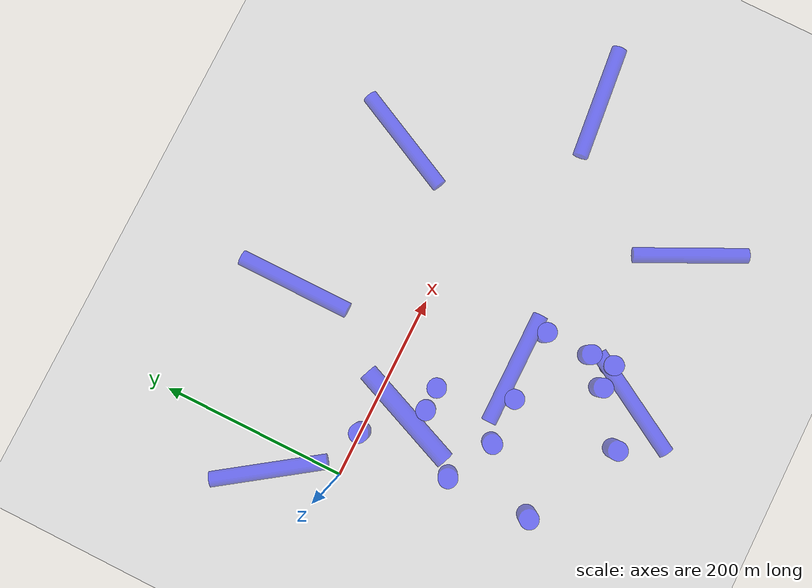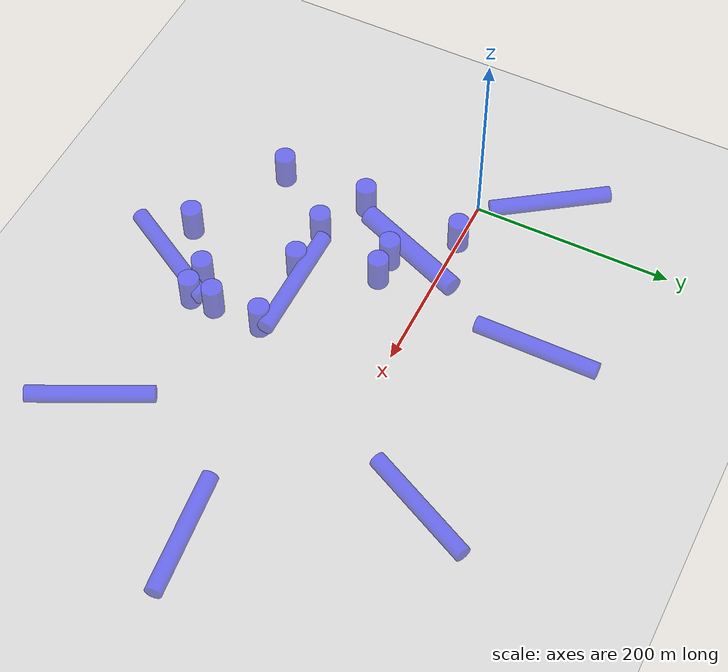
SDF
<?xml version='1.0' encoding='utf-8'?>
<sdf version="1.6">
  <world name="default">
    <physics name="default_physics" default="0" type="ode">
      <ode>
        <solver>
          <type>quick</type>
          <iters>50</iters>
          <sor>0.8</sor>
          <use_dynamic_moi_rescaling>0</use_dynamic_moi_rescaling>
        </solver>
        <constraints>
          <cfm>0</cfm>
          <erp>0.2</erp>
          <contact_max_correcting_vel>0.1</contact_max_correcting_vel>
          <contact_surface_layer>0</contact_surface_layer>
        </constraints>
      </ode>
      <real_time_update_rate>100</real_time_update_rate>
      <max_step_size>0.01</max_step_size>
      <real_time_factor>1</real_time_factor>
    </physics>
    <light name="sun" type="directional">
      <cast_shadows>1</cast_shadows>
      <pose frame="">0 0 10 0 -0 0</pose>
      <diffuse>0.8 0.8 0.8 1</diffuse>
      <specular>0.2 0.2 0.2 1</specular>
      <attenuation>
        <range>1000</range>
        <constant>0.9</constant>
        <linear>0.01</linear>
        <quadratic>0.001</quadratic>
      </attenuation>
      <direction>-0.5 0.1 -0.9</direction>
    </light>
    <model name="ground_plane">
      <static>1</static>
      <link name="link">
        <collision name="collision">
          <geometry>
            <plane>
              <normal>0 0 1</normal>
              <size>1400.0 1400.0</size>
            </plane>
          </geometry>
          <surface>
            <friction>
              <ode>
                <mu>100</mu>
                <mu2>50</mu2>
              </ode>
              <torsional>
                <ode />
              </torsional>
            </friction>
            <contact>
              <ode />
            </contact>
            <bounce />
          </surface>
          <max_contacts>10</max_contacts>
        </collision>
        <visual name="visual">
          <cast_shadows>0</cast_shadows>
          <geometry>
            <plane>
              <normal>0 0 1</normal>
              <size>1400.0 1400.0</size>
            </plane>
          </geometry>
          <material>
            <script>
              <uri>file://media/materials/scripts/gazebo.material</uri>
              <name>Gazebo/Grey</name>
            </script>
          </material>
        </visual>
        <self_collide>0</self_collide>
        <enable_wind>0</enable_wind>
        <kinematic>0</kinematic>
      </link>
    </model>
    <gravity>0 0 0</gravity>
    <magnetic_field>6e-06 2.3e-05 -4.2e-05</magnetic_field>
    <atmosphere type="adiabatic" />
    <scene>
      <ambient>0.4 0.4 0.4 1</ambient>
      <background>0.7 0.7 0.7 1</background>
      <shadows>1</shadows>
    </scene>
    <wind />
    <spherical_coordinates>
      <surface_model>EARTH_WGS84</surface_model>
      <latitude_deg>0</latitude_deg>
      <longitude_deg>0</longitude_deg>
      <elevation>0</elevation>
      <heading_deg>0</heading_deg>
    </spherical_coordinates>
    <model name="suav1">
      <link name="base_link">
        <pose frame="">0 0 0 0 -0 0</pose>
        <inertial>
          <pose frame="">0 0 0 0 -0 0</pose>
          <mass>0.1</mass>
          <inertia>
            <ixx>1</ixx>
            <ixy>0</ixy>
            <ixz>0</ixz>
            <iyy>1</iyy>
            <iyz>0</iyz>
            <izz>1</izz>
          </inertia>
        </inertial>
        <collision name="base_link_fixed_joint_lump__body_link_collision">
          <pose frame="">0 0 0 0 -0 0</pose>
          <geometry>
            <mesh>
              <scale>0.1 0.1 0.1</scale>
              <uri>package://simple_airplane_description/meshes/simple_airplane.dae</uri>
            </mesh>
          </geometry>
          <surface>
            <contact>
              <ode />
            </contact>
            <friction>
              <ode />
              <torsional>
                <ode />
              </torsional>
            </friction>
            <bounce />
          </surface>
          <max_contacts>10</max_contacts>
        </collision>
        <visual name="base_link_fixed_joint_lump__base_visual_visual">
          <pose frame="">0 0 0 0 -0 0</pose>
          <geometry>
            <mesh>
              <scale>0.1 0.1 0.1</scale>
              <uri>package://simple_airplane_description/meshes/simple_airplane.dae</uri>
            </mesh>
          </geometry>
        </visual>
        <velocity_decay />
        <gravity>0</gravity>
        <gravity>1</gravity>
        <velocity_decay />
        <gravity>0</gravity>
        <self_collide>0</self_collide>
        <enable_wind>0</enable_wind>
        <kinematic>0</kinematic>
        <visual name="front_camera_housing">
          <pose>0 0 0.015 0 -0 0</pose>
          <geometry>
            <box>
              <size>0.04 0.05 0.04</size>
            </box>
          </geometry>
        </visual>
        <visual name="front_camera_lens">
          <pose>0.025 0 0.015 0 1.5708 0</pose>
          <geometry>
            <cylinder>
              <length>0.01</length>
              <radius>0.012</radius>
            </cylinder>
          </geometry>
        </visual>
        <sensor name="front_camera" type="camera">
          <pose>0.03 0 0.015 0 0 0</pose>
          <always_on>true</always_on>
          <update_rate>15</update_rate>
          <visualize>false</visualize>
          <camera name="front_camera">
            <horizontal_fov>1.5707963267948966</horizontal_fov>
            <image>
              <width>640</width>
              <height>360</height>
              <format>R8G8B8</format>
            </image>
            <clip>
              <near>0.05</near>
              <far>300</far>
            </clip>
          </camera>
          <plugin filename="libgazebo_ros_camera.so" name="front_camera_controller">
            <robotNamespace>/suav1</robotNamespace>
            <cameraName>front_camera</cameraName>
            <imageTopicName>image_raw</imageTopicName>
            <cameraInfoTopicName>camera_info</cameraInfoTopicName>
            <frameName>front_camera_optical_frame</frameName>
            <updateRate>15.0</updateRate>
          </plugin>
        </sensor>
      </link>
      <static>0</static>
      <plugin name="object_controller" filename="libgazebo_ros_planar_move_with_banking_and_pitching_plugin1.so">
        <commandTopic>cmd_vel</commandTopic>
        <odometryTopic>odom</odometryTopic>
        <odometryFrame>odom</odometryFrame>
        <odometryRate>80.0</odometryRate>
        <robotBaseFrame>base_link</robotBaseFrame>
        <robotNamespace>/suav1/</robotNamespace>
      </plugin>
      <pose frame="">0 0 2 0 -0 0</pose>
    </model>
    <model name="static_obs1">
      <static>true</static>
      <pose frame="">50 0 18.13715 0 0 0</pose>
      <link name="link">
        <inertial>
          <mass>1</mass>
          <inertia>
            <ixx>0.145833</ixx>
            <ixy>0</ixy>
            <ixz>0</ixz>
            <iyy>0.145833</iyy>
            <iyz>0</iyz>
            <izz>0.125</izz>
          </inertia>
          <pose frame="">0 0 0 0 -0 0</pose>
        </inertial>
        <collision name="collision">
          <geometry>
            <cylinder>
              <radius>10.1458</radius>
              <length>36.2743</length>
            </cylinder>
          </geometry>
          <max_contacts>10</max_contacts>
          <surface>
            <contact>
              <ode />
            </contact>
            <bounce />
            <friction>
              <torsional>
                <ode />
              </torsional>
              <ode />
            </friction>
          </surface>
        </collision>
        <visual name="visual">
          <geometry>
            <cylinder>
              <radius>10.1458</radius>
              <length>36.2743</length>
            </cylinder>
          </geometry>
          <material>
            <ambient>0 0 1 1</ambient>
            <diffuse>0 0 1 1</diffuse>
          </material>
          <transparency>0.5</transparency>
        </visual>
        <self_collide>0</self_collide>
        <enable_wind>0</enable_wind>
        <kinematic>0</kinematic>
      </link>
    </model>
    <model name="unit_cylinder_clone">
      <static>true</static>
      <pose frame="">100.023 -50.0251 18.13715 0 0 0</pose>
      <link name="link">
        <inertial>
          <mass>1</mass>
          <inertia>
            <ixx>0.145833</ixx>
            <ixy>0</ixy>
            <ixz>0</ixz>
            <iyy>0.145833</iyy>
            <iyz>0</iyz>
            <izz>0.125</izz>
          </inertia>
          <pose frame="">0 0 0 0 -0 0</pose>
        </inertial>
        <collision name="collision">
          <geometry>
            <cylinder>
              <radius>10.1458</radius>
              <length>36.2743</length>
            </cylinder>
          </geometry>
          <max_contacts>10</max_contacts>
          <surface>
            <contact>
              <ode />
            </contact>
            <bounce />
            <friction>
              <torsional>
                <ode />
              </torsional>
              <ode />
            </friction>
          </surface>
        </collision>
        <visual name="visual">
          <geometry>
            <cylinder>
              <radius>10.1458</radius>
              <length>36.2743</length>
            </cylinder>
          </geometry>
          <material>
            <ambient>0 0 1 1</ambient>
            <diffuse>0 0 1 1</diffuse>
          </material>
          <transparency>0.5</transparency>
        </visual>
        <self_collide>0</self_collide>
        <enable_wind>0</enable_wind>
        <kinematic>0</kinematic>
      </link>
    </model>
    <model name="unit_cylinder_clone_0">
      <static>true</static>
      <pose frame="">125.023 -50.0251 18.13715 0 0 0</pose>
      <link name="link">
        <inertial>
          <mass>1</mass>
          <inertia>
            <ixx>0.145833</ixx>
            <ixy>0</ixy>
            <ixz>0</ixz>
            <iyy>0.145833</iyy>
            <iyz>0</iyz>
            <izz>0.125</izz>
          </inertia>
          <pose frame="">0 0 0 0 -0 0</pose>
        </inertial>
        <collision name="collision">
          <geometry>
            <cylinder>
              <radius>10.1458</radius>
              <length>36.2743</length>
            </cylinder>
          </geometry>
          <max_contacts>10</max_contacts>
          <surface>
            <contact>
              <ode />
            </contact>
            <bounce />
            <friction>
              <torsional>
                <ode />
              </torsional>
              <ode />
            </friction>
          </surface>
        </collision>
        <visual name="visual">
          <geometry>
            <cylinder>
              <radius>10.1458</radius>
              <length>36.2743</length>
            </cylinder>
          </geometry>
          <material>
            <ambient>0 0 1 1</ambient>
            <diffuse>0 0 1 1</diffuse>
          </material>
          <transparency>0.5</transparency>
        </visual>
        <self_collide>0</self_collide>
        <enable_wind>0</enable_wind>
        <kinematic>0</kinematic>
      </link>
    </model>
    <model name="unit_cylinder_clone_1">
      <static>true</static>
      <pose frame="">50.0229 -100.025 18.13715 0 0 0</pose>
      <link name="link">
        <inertial>
          <mass>1</mass>
          <inertia>
            <ixx>0.145833</ixx>
            <ixy>0</ixy>
            <ixz>0</ixz>
            <iyy>0.145833</iyy>
            <iyz>0</iyz>
            <izz>0.125</izz>
          </inertia>
          <pose frame="">0 0 0 0 -0 0</pose>
        </inertial>
        <collision name="collision">
          <geometry>
            <cylinder>
              <radius>10.1458</radius>
              <length>36.2743</length>
            </cylinder>
          </geometry>
          <max_contacts>10</max_contacts>
          <surface>
            <contact>
              <ode />
            </contact>
            <bounce />
            <friction>
              <torsional>
                <ode />
              </torsional>
              <ode />
            </friction>
          </surface>
        </collision>
        <visual name="visual">
          <geometry>
            <cylinder>
              <radius>10.1458</radius>
              <length>36.2743</length>
            </cylinder>
          </geometry>
          <material>
            <ambient>0 0 1 1</ambient>
            <diffuse>0 0 1 1</diffuse>
          </material>
          <transparency>0.5</transparency>
        </visual>
        <self_collide>0</self_collide>
        <enable_wind>0</enable_wind>
        <kinematic>0</kinematic>
      </link>
    </model>
    <model name="unit_cylinder_clone_2">
      <static>true</static>
      <pose frame="">100.133 -125.017 18.13715 0 0 0</pose>
      <link name="link">
        <inertial>
          <mass>1</mass>
          <inertia>
            <ixx>0.145833</ixx>
            <ixy>0</ixy>
            <ixz>0</ixz>
            <iyy>0.145833</iyy>
            <iyz>0</iyz>
            <izz>0.125</izz>
          </inertia>
          <pose frame="">0 0 0 0 -0 0</pose>
        </inertial>
        <collision name="collision">
          <geometry>
            <cylinder>
              <radius>10.1458</radius>
              <length>36.2743</length>
            </cylinder>
          </geometry>
          <max_contacts>10</max_contacts>
          <surface>
            <contact>
              <ode />
            </contact>
            <bounce />
            <friction>
              <torsional>
                <ode />
              </torsional>
              <ode />
            </friction>
          </surface>
        </collision>
        <visual name="visual">
          <geometry>
            <cylinder>
              <radius>10.1458</radius>
              <length>36.2743</length>
            </cylinder>
          </geometry>
          <material>
            <ambient>0 0 1 1</ambient>
            <diffuse>0 0 1 1</diffuse>
          </material>
          <transparency>0.5</transparency>
        </visual>
        <self_collide>0</self_collide>
        <enable_wind>0</enable_wind>
        <kinematic>0</kinematic>
      </link>
    </model>
    <model name="unit_cylinder_clone_3_clone">
      <static>true</static>
      <pose frame="">225.023 -125.025 18.13715 0 0 0</pose>
      <link name="link">
        <inertial>
          <mass>1</mass>
          <inertia>
            <ixx>0.145833</ixx>
            <ixy>0</ixy>
            <ixz>0</ixz>
            <iyy>0.145833</iyy>
            <iyz>0</iyz>
            <izz>0.125</izz>
          </inertia>
          <pose frame="">0 0 0 0 -0 0</pose>
        </inertial>
        <collision name="collision">
          <geometry>
            <cylinder>
              <radius>10.1458</radius>
              <length>36.2743</length>
            </cylinder>
          </geometry>
          <max_contacts>10</max_contacts>
          <surface>
            <contact>
              <ode />
            </contact>
            <bounce />
            <friction>
              <torsional>
                <ode />
              </torsional>
              <ode />
            </friction>
          </surface>
        </collision>
        <visual name="visual">
          <geometry>
            <cylinder>
              <radius>10.1458</radius>
              <length>36.2743</length>
            </cylinder>
          </geometry>
          <material>
            <ambient>0 0 1 1</ambient>
            <diffuse>0 0 1 1</diffuse>
          </material>
          <transparency>0.5</transparency>
        </visual>
        <self_collide>0</self_collide>
        <enable_wind>0</enable_wind>
        <kinematic>0</kinematic>
      </link>
    </model>
    <model name="unit_cylinder_clone_3_clone_0">
      <static>true</static>
      <pose frame="">50.0229 -190.025 18.13715 0 0 0</pose>
      <link name="link">
        <inertial>
          <mass>1</mass>
          <inertia>
            <ixx>0.145833</ixx>
            <ixy>0</ixy>
            <ixz>0</ixz>
            <iyy>0.145833</iyy>
            <iyz>0</iyz>
            <izz>0.125</izz>
          </inertia>
          <pose frame="">0 0 0 0 -0 0</pose>
        </inertial>
        <collision name="collision">
          <geometry>
            <cylinder>
              <radius>10.1458</radius>
              <length>36.2743</length>
            </cylinder>
          </geometry>
          <max_contacts>10</max_contacts>
          <surface>
            <contact>
              <ode />
            </contact>
            <bounce />
            <friction>
              <torsional>
                <ode />
              </torsional>
              <ode />
            </friction>
          </surface>
        </collision>
        <visual name="visual">
          <geometry>
            <cylinder>
              <radius>10.1458</radius>
              <length>36.2743</length>
            </cylinder>
          </geometry>
          <material>
            <ambient>0 0 1 1</ambient>
            <diffuse>0 0 1 1</diffuse>
          </material>
          <transparency>0.5</transparency>
        </visual>
        <self_collide>0</self_collide>
        <enable_wind>0</enable_wind>
        <kinematic>0</kinematic>
      </link>
    </model>
    <model name="unit_cylinder_clone_3_clone_0_clone">
      <static>true</static>
      <pose frame="">150.023 -125.025 18.13715 0 0 0</pose>
      <link name="link">
        <inertial>
          <mass>1</mass>
          <inertia>
            <ixx>0.145833</ixx>
            <ixy>0</ixy>
            <ixz>0</ixz>
            <iyy>0.145833</iyy>
            <iyz>0</iyz>
            <izz>0.125</izz>
          </inertia>
          <pose frame="">0 0 0 0 -0 0</pose>
        </inertial>
        <collision name="collision">
          <geometry>
            <cylinder>
              <radius>10.1458</radius>
              <length>36.2743</length>
            </cylinder>
          </geometry>
          <max_contacts>10</max_contacts>
          <surface>
            <contact>
              <ode />
            </contact>
            <bounce />
            <friction>
              <torsional>
                <ode />
              </torsional>
              <ode />
            </friction>
          </surface>
        </collision>
        <visual name="visual">
          <geometry>
            <cylinder>
              <radius>10.1458</radius>
              <length>36.2743</length>
            </cylinder>
          </geometry>
          <material>
            <ambient>0 0 1 1</ambient>
            <diffuse>0 0 1 1</diffuse>
          </material>
          <transparency>0.5</transparency>
        </visual>
        <self_collide>0</self_collide>
        <enable_wind>0</enable_wind>
        <kinematic>0</kinematic>
      </link>
    </model>
    <model name="unit_cylinder_clone_3_clone_0_clone_0">
      <static>true</static>
      <pose frame="">225.023 -200.025 18.13715 0 0 0</pose>
      <link name="link">
        <inertial>
          <mass>1</mass>
          <inertia>
            <ixx>0.145833</ixx>
            <ixy>0</ixy>
            <ixz>0</ixz>
            <iyy>0.145833</iyy>
            <iyz>0</iyz>
            <izz>0.125</izz>
          </inertia>
          <pose frame="">0 0 0 0 -0 0</pose>
        </inertial>
        <collision name="collision">
          <geometry>
            <cylinder>
              <radius>10.1458</radius>
              <length>36.2743</length>
            </cylinder>
          </geometry>
          <max_contacts>10</max_contacts>
          <surface>
            <contact>
              <ode />
            </contact>
            <bounce />
            <friction>
              <torsional>
                <ode />
              </torsional>
              <ode />
            </friction>
          </surface>
        </collision>
        <visual name="visual">
          <geometry>
            <cylinder>
              <radius>10.1458</radius>
              <length>36.2743</length>
            </cylinder>
          </geometry>
          <material>
            <ambient>0 0 1 1</ambient>
            <diffuse>0 0 1 1</diffuse>
          </material>
          <transparency>0.5</transparency>
        </visual>
        <self_collide>0</self_collide>
        <enable_wind>0</enable_wind>
        <kinematic>0</kinematic>
      </link>
    </model>
    <model name="unit_cylinder_clone_3_clone_0_clone_0_clone">
      <static>true</static>
      <pose frame="">225.023 -175.025 18.13715 0 0 0</pose>
      <link name="link">
        <inertial>
          <mass>1</mass>
          <inertia>
            <ixx>0.145833</ixx>
            <ixy>0</ixy>
            <ixz>0</ixz>
            <iyy>0.145833</iyy>
            <iyz>0</iyz>
            <izz>0.125</izz>
          </inertia>
          <pose frame="">0 0 0 0 -0 0</pose>
        </inertial>
        <collision name="collision">
          <geometry>
            <cylinder>
              <radius>10.1458</radius>
              <length>36.2743</length>
            </cylinder>
          </geometry>
          <max_contacts>10</max_contacts>
          <surface>
            <contact>
              <ode />
            </contact>
            <bounce />
            <friction>
              <torsional>
                <ode />
              </torsional>
              <ode />
            </friction>
          </surface>
        </collision>
        <visual name="visual">
          <geometry>
            <cylinder>
              <radius>10.1458</radius>
              <length>36.2743</length>
            </cylinder>
          </geometry>
          <material>
            <ambient>0 0 1 1</ambient>
            <diffuse>0 0 1 1</diffuse>
          </material>
          <transparency>0.5</transparency>
        </visual>
        <self_collide>0</self_collide>
        <enable_wind>0</enable_wind>
        <kinematic>0</kinematic>
      </link>
    </model>
    <model name="unit_cylinder_clone_3_clone_0_clone_0_clone_clone">
      <static>true</static>
      <pose frame="">200.023 -200.025 18.13715 0 0 0</pose>
      <link name="link">
        <inertial>
          <mass>1</mass>
          <inertia>
            <ixx>0.145833</ixx>
            <ixy>0</ixy>
            <ixz>0</ixz>
            <iyy>0.145833</iyy>
            <iyz>0</iyz>
            <izz>0.125</izz>
          </inertia>
          <pose frame="">0 0 0 0 -0 0</pose>
        </inertial>
        <collision name="collision">
          <geometry>
            <cylinder>
              <radius>10.1458</radius>
              <length>36.2743</length>
            </cylinder>
          </geometry>
          <max_contacts>10</max_contacts>
          <surface>
            <contact>
              <ode />
            </contact>
            <bounce />
            <friction>
              <torsional>
                <ode />
              </torsional>
              <ode />
            </friction>
          </surface>
        </collision>
        <visual name="visual">
          <geometry>
            <cylinder>
              <radius>10.1458</radius>
              <length>36.2743</length>
            </cylinder>
          </geometry>
          <material>
            <ambient>0 0 1 1</ambient>
            <diffuse>0 0 1 1</diffuse>
          </material>
          <transparency>0.5</transparency>
        </visual>
        <self_collide>0</self_collide>
        <enable_wind>0</enable_wind>
        <kinematic>0</kinematic>
      </link>
    </model>
    <model name="unit_cylinder_clone_3_clone_0_clone_1">
      <static>true</static>
      <pose frame="">150.023 -240.025 18.13715 0 0 0</pose>
      <link name="link">
        <inertial>
          <mass>1</mass>
          <inertia>
            <ixx>0.145833</ixx>
            <ixy>0</ixy>
            <ixz>0</ixz>
            <iyy>0.145833</iyy>
            <iyz>0</iyz>
            <izz>0.125</izz>
          </inertia>
          <pose frame="">0 0 0 0 -0 0</pose>
        </inertial>
        <collision name="collision">
          <geometry>
            <cylinder>
              <radius>10.1458</radius>
              <length>36.2743</length>
            </cylinder>
          </geometry>
          <max_contacts>10</max_contacts>
          <surface>
            <contact>
              <ode />
            </contact>
            <bounce />
            <friction>
              <torsional>
                <ode />
              </torsional>
              <ode />
            </friction>
          </surface>
        </collision>
        <visual name="visual">
          <geometry>
            <cylinder>
              <radius>10.1458</radius>
              <length>36.2743</length>
            </cylinder>
          </geometry>
          <material>
            <ambient>0 0 1 1</ambient>
            <diffuse>0 0 1 1</diffuse>
          </material>
          <transparency>0.5</transparency>
        </visual>
        <self_collide>0</self_collide>
        <enable_wind>0</enable_wind>
        <kinematic>0</kinematic>
      </link>
    </model>
    <gui fullscreen="0">
      <camera name="user_camera">
        <pose frame="">210.0 -530.0 430.0 0.0 0.85 1.5707963268</pose>
        <view_controller>orbit</view_controller>
        <projection_type>perspective</projection_type>
      </camera>
    </gui>
    <model name="horizontal_obs1">
      <static>true</static>
      <pose>85.0 -35.0 11.0 0 1.5707963267948966 1.1868238913561442</pose>
      <link name="link">
        <gravity>false</gravity>
        <collision name="collision">
          <geometry>
            <cylinder>
              <radius>10.0</radius>
              <length>120.0</length>
            </cylinder>
          </geometry>
        </collision>
        <visual name="visual">
          <geometry>
            <cylinder>
              <radius>10.0</radius>
              <length>120.0</length>
            </cylinder>
          </geometry>
          <material>
            <ambient>0 0 1 1</ambient>
            <diffuse>0 0 1 1</diffuse>
          </material>
          <transparency>0.5</transparency>
        </visual>
      </link>
    </model>
    <model name="horizontal_obs2">
      <static>true</static>
      <pose>178.0 -112.0 26.0 0 1.5707963267948966 0.0</pose>
      <link name="link">
        <gravity>false</gravity>
        <collision name="collision">
          <geometry>
            <cylinder>
              <radius>8.0</radius>
              <length>120.0</length>
            </cylinder>
          </geometry>
        </collision>
        <visual name="visual">
          <geometry>
            <cylinder>
              <radius>8.0</radius>
              <length>120.0</length>
            </cylinder>
          </geometry>
          <material>
            <ambient>0 0 1 1</ambient>
            <diffuse>0 0 1 1</diffuse>
          </material>
          <transparency>0.5</transparency>
        </visual>
      </link>
    </model>
    <model name="horizontal_obs3">
      <static>true</static>
      <pose>200.0 -235.0 22.0 0 1.5707963267948966 1.0471975511965976</pose>
      <link name="link">
        <gravity>false</gravity>
        <collision name="collision">
          <geometry>
            <cylinder>
              <radius>8.0</radius>
              <length>120.0</length>
            </cylinder>
          </geometry>
        </collision>
        <visual name="visual">
          <geometry>
            <cylinder>
              <radius>8.0</radius>
              <length>120.0</length>
            </cylinder>
          </geometry>
          <material>
            <ambient>0 0 1 1</ambient>
            <diffuse>0 0 1 1</diffuse>
          </material>
          <transparency>0.5</transparency>
        </visual>
      </link>
    </model>
    <model name="horizontal_obs4">
      <static>true</static>
      <pose>365.0 -225.0 12.0 0 1.5707963267948966 2.0245819323134224</pose>
      <link name="link">
        <gravity>false</gravity>
        <collision name="collision">
          <geometry>
            <cylinder>
              <radius>8.0</radius>
              <length>120.0</length>
            </cylinder>
          </geometry>
        </collision>
        <visual name="visual">
          <geometry>
            <cylinder>
              <radius>8.0</radius>
              <length>120.0</length>
            </cylinder>
          </geometry>
          <material>
            <ambient>0 0 1 1</ambient>
            <diffuse>0 0 1 1</diffuse>
          </material>
          <transparency>0.5</transparency>
        </visual>
      </link>
    </model>
    <model name="horizontal_obs5">
      <static>true</static>
      <pose>462.0 -70.0 34.0 0 1.5707963267948966 0.10471975511965978</pose>
      <link name="link">
        <gravity>false</gravity>
        <collision name="collision">
          <geometry>
            <cylinder>
              <radius>8.0</radius>
              <length>120.0</length>
            </cylinder>
          </geometry>
        </collision>
        <visual name="visual">
          <geometry>
            <cylinder>
              <radius>8.0</radius>
              <length>120.0</length>
            </cylinder>
          </geometry>
          <material>
            <ambient>0 0 1 1</ambient>
            <diffuse>0 0 1 1</diffuse>
          </material>
          <transparency>0.5</transparency>
        </visual>
      </link>
    </model>
    <model name="horizontal_obs6">
      <static>true</static>
      <pose>340.0 95.0 16.0 0 1.5707963267948966 1.117010721276371</pose>
      <link name="link">
        <gravity>false</gravity>
        <collision name="collision">
          <geometry>
            <cylinder>
              <radius>8.0</radius>
              <length>120.0</length>
            </cylinder>
          </geometry>
        </collision>
        <visual name="visual">
          <geometry>
            <cylinder>
              <radius>8.0</radius>
              <length>120.0</length>
            </cylinder>
          </geometry>
          <material>
            <ambient>0 0 1 1</ambient>
            <diffuse>0 0 1 1</diffuse>
          </material>
          <transparency>0.5</transparency>
        </visual>
      </link>
    </model>
    <model name="horizontal_obs7">
      <static>true</static>
      <pose>155.0 125.0 38.0 0 1.5707963267948966 1.5707963267948966</pose>
      <link name="link">
        <gravity>false</gravity>
        <collision name="collision">
          <geometry>
            <cylinder>
              <radius>8.0</radius>
              <length>120.0</length>
            </cylinder>
          </geometry>
        </collision>
        <visual name="visual">
          <geometry>
            <cylinder>
              <radius>8.0</radius>
              <length>120.0</length>
            </cylinder>
          </geometry>
          <material>
            <ambient>0 0 1 1</ambient>
            <diffuse>0 0 1 1</diffuse>
          </material>
          <transparency>0.5</transparency>
        </visual>
      </link>
    </model>
    <model name="horizontal_obs8">
      <static>true</static>
      <pose>-25.0 65.0 20.0 0 1.5707963267948966 2.181661564992912</pose>
      <link name="link">
        <gravity>false</gravity>
        <collision name="collision">
          <geometry>
            <cylinder>
              <radius>8.0</radius>
              <length>120.0</length>
            </cylinder>
          </geometry>
        </collision>
        <visual name="visual">
          <geometry>
            <cylinder>
              <radius>8.0</radius>
              <length>120.0</length>
            </cylinder>
          </geometry>
          <material>
            <ambient>0 0 1 1</ambient>
            <diffuse>0 0 1 1</diffuse>
          </material>
          <transparency>0.5</transparency>
        </visual>
      </link>
    </model>
  </world>
</sdf>
